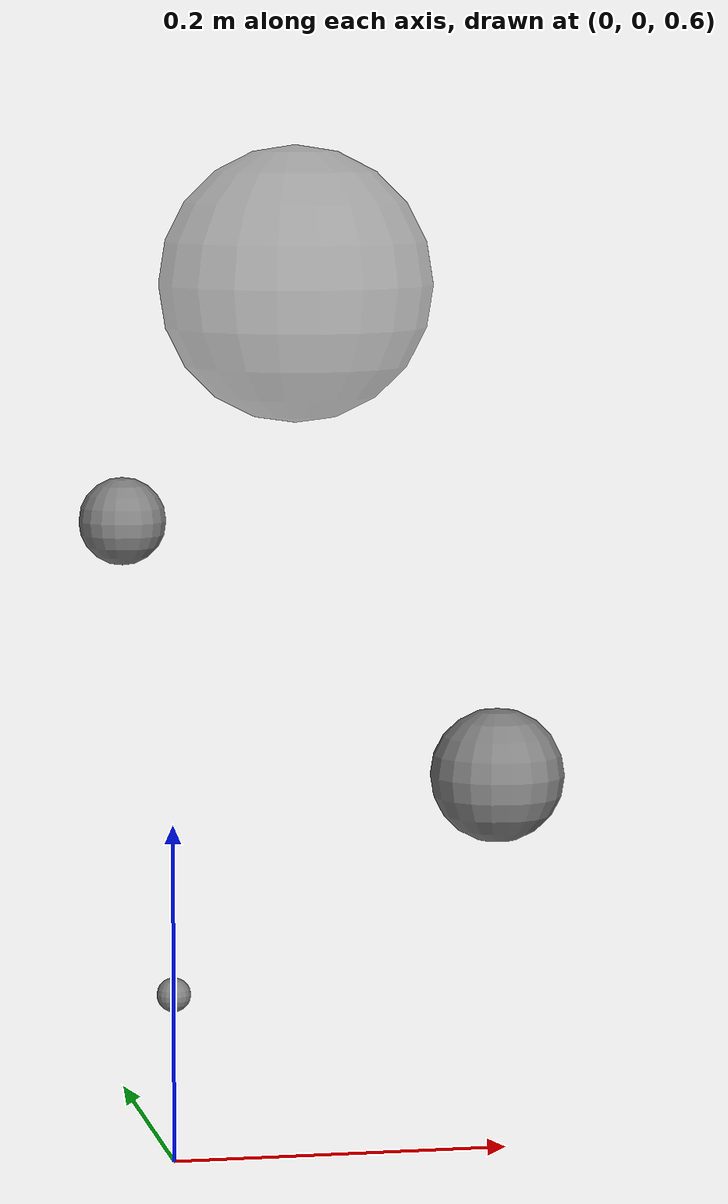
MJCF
<mujoco model="booster_t1">
  <compiler angle="radian" autolimits="true" />

  <worldbody>
    <body name="Trunk" pos="0 0 0.7">
      <inertial pos="0.055138 -1.42184e-06 0.105043" quat="0.999959 1.39867e-05 -0.00902028 -1.39205e-05" mass="11.7016" diaginertia="0.0915734 0.0768118 0.0556067" />
      <site name="imu" size="0.01" pos="0.0 0.0 0.0" />
      <joint name="world_joint" type="free" limited="false" actuatorfrclimited="false" />
      <geom name="trunk_collision" size="0.085 0.09 0.145" pos="0.06 0 0.12" type="box" contype="1" conaffinity="0" rgba="0.76 0.76 0.76 0." />
      <body name="H1" pos="0.0625 0 0.243">
        <inertial pos="-0.000508 -0.001403 0.057432" quat="0.763881 -0.0132172 0.00173419 0.645219" mass="0.44391" diaginertia="0.000241549 0.00022351 0.000149941" />
        <joint name="AAHead_yaw" pos="0 0 0" axis="0 0 1" range="-1.57 1.57" />
        <geom size="0.025 0.035" pos="0 0 0.06" quat="0.707105 0.707108 0 0" type="cylinder" rgba="0.4 0.4 0.4 0." contype="0" conaffinity="0" density="0" />
        <body name="H2" pos="0 0 0.06185">
          <inertial pos="0.007802 0.001262 0.098631" quat="0.988453 0.106172 -0.0745686 -0.0782786" mass="0.631019" diaginertia="0.00203553 0.00192467 0.00172381" />
          <joint name="Head_pitch" pos="0 0 0" axis="0 1 0" range="-0.35 1.22" />
          <geom size="0.08" pos="0.01 0 0.11" rgba="0.4 0.4 0.4 0.5" contype="0" conaffinity="0" density="0" />
        </body>
      </body>
      <body name="AL1" pos="0.0575 0.1063 0.219" quat="1 0 0.000440565 0">
        <inertial pos="-0.000677 0.044974 0" quat="0.50423 0.495734 -0.50423 0.495734" mass="0.53" diaginertia="0.001367 0.00129329 0.000292711" />
        <joint name="Left_Shoulder_Pitch" pos="0 0 0" axis="0 1 0" range="-3.31 1.22" armature="0.05" />
        <geom size="0.03 0.035" pos="0 0.047 0" quat="0.707105 0 0.707108 0" type="cylinder" rgba="0.76 0.76 0.76 0." contype="0" conaffinity="0" density="0" />
        <body name="AL2" pos="0 0.047 0">
          <inertial pos="0.003862 0.037976 0" quat="0.487991 0.511727 -0.487991 0.511727" mass="0.16" diaginertia="0.000401 0.00034538 0.00017662" />
          <joint name="Left_Shoulder_Roll" pos="0 0 0" axis="1 0 0" range="-1.74 1.57" />
          <body name="AL3" pos="0.00025 0.0605 0">
            <inertial pos="0 0.085353 -9.9e-05" quat="0.70641 0.707803 0 0" mass="1.02" diaginertia="0.012869 0.012798 0.000620953" />
            <joint name="Left_Elbow_Pitch" pos="0 0 0" axis="0 1 0" range="-2.27 2.27" armature="0.05" />
            <geom size="0.03 0.095" pos="0 0.07 0" quat="0.707105 0.707108 0 0" type="cylinder" rgba="0.4 0.4 0.4 0." contype="0" conaffinity="0" density="0" />
            <body name="left_hand_link" pos="0 0.1471 0">
              <inertial pos="-0.000107344 0.11022 0.00058741" quat="0.707869 0.706344 -5.3547e-05 -0.000214933" mass="0.329214" diaginertia="0.00819152 0.00816355 0.000224963" />
              <joint name="Left_Elbow_Yaw" pos="0 0 0" axis="0 0 1" range="-2.44 0" />
              <geom size="0.029 0.065" pos="0 0.12 0" quat="0.707105 0.707108 0 0" type="cylinder" rgba="0.4 0.4 0.4 0." contype="0" conaffinity="0" density="0" />
              <geom size="0.031" pos="0 0.216 0" contype="0" conaffinity="0" density="0" />
            </body>
          </body>
        </body>
      </body>
      <body name="AR1" pos="0.0575 -0.1063 0.219" quat="1 0 0.000440565 0">
        <inertial pos="-0.000677 -0.044974 0" quat="0.50423 0.495734 -0.50423 0.495734" mass="0.53" diaginertia="0.001367 0.00129329 0.000292711" />
        <joint name="Right_Shoulder_Pitch" pos="0 0 0" axis="0 1 0" range="-3.31 1.22" armature="0.05" />
        <geom size="0.03 0.035" pos="0 -0.047 0" quat="0.707105 0 0.707108 0" type="cylinder" rgba="0.76 0.76 0.76 0." contype="0" conaffinity="0" density="0" />
        <body name="AR2" pos="0 -0.047 0">
          <inertial pos="0.003862 -0.037976 0" quat="0.511727 0.487991 -0.511727 0.487991" mass="0.16" diaginertia="0.000401 0.00034538 0.00017662" />
          <joint name="Right_Shoulder_Roll" pos="0 0 0" axis="1 0 0" range="-1.57 1.74" />
          <body name="AR3" pos="0.00025 -0.0605 0">
            <inertial pos="0 -0.085353 -9.9e-05" quat="0.707803 0.70641 0 0" mass="1.02" diaginertia="0.012869 0.012798 0.000620953" />
            <joint name="Right_Elbow_Pitch" pos="0 0 0" axis="0 1 0" range="-2.27 2.27" armature="0.05" />
            <geom size="0.03 0.095" pos="0 -0.07 0" quat="0.707105 0.707108 0 0" type="cylinder" rgba="0.4 0.4 0.4 0." contype="0" conaffinity="0" density="0" />
            <body name="right_hand_link" pos="0 -0.1471 0">
              <inertial pos="-0.000107344 -0.11022 0.00058741" quat="0.706344 0.707869 0.000214933 5.3547e-05" mass="0.329214" diaginertia="0.00819152 0.00816355 0.000224963" />
              <joint name="Right_Elbow_Yaw" pos="0 0 0" axis="0 0 1" range="0 2.44" />
              <geom size="0.029 0.065" pos="0 -0.12 0" quat="0.707105 0.707108 0 0" type="cylinder" rgba="0.4 0.4 0.4 0." contype="0" conaffinity="0" density="0" />
              <geom size="0.031" pos="0 -0.216 0" contype="0" conaffinity="0" density="0" />
            </body>
          </body>
        </body>
      </body>
      <body name="Waist" pos="0.0625 0 -0.1155">
        <inertial pos="0.002284 3e-06 0.007301" quat="0.983649 0.000360386 -0.180076 0.00269791" mass="2.581" diaginertia="0.00536742 0.005299 0.00474258" />
        <joint name="Waist" pos="0 0 0" axis="0 0 1" range="-1.57 1.57" />
        <geom size="0.06 0.05" quat="0.707105 0.707108 0 0" type="cylinder" rgba="0.4 0.4 0.4 0." contype="0" conaffinity="0" density="0" />
        <body name="Hip_Pitch_Left" pos="0 0.106 0">
          <inertial pos="0.000534 -0.007296 -0.018083" quat="0.975141 0.2211 0.0145808 0.0017406" mass="1.021" diaginertia="0.00180547 0.00145926 0.00125327" />
          <joint name="Left_Hip_Pitch" pos="0 0 0" axis="0 1 0" range="-3.002 2.2166" />
          <geom size="0.045 0.0425" pos="-0.002 0 -0.02" quat="0.707105 0 0.707108 0" type="cylinder" rgba="0.76 0.76 0.76 0." contype="0" conaffinity="0" density="0" />
          <body name="Hip_Roll_Left" pos="0 0 -0.02">
            <inertial pos="0.001101 2.4e-05 -0.05375" quat="0.707081 -0.00599604 -0.00599604 0.707081" mass="0.385" diaginertia="0.001743 0.00151729 0.000514712" />
            <joint name="Left_Hip_Roll" pos="0 0 0" axis="1 0 0" range="-0.2 1.57" />
            <body name="Hip_Yaw_Left" pos="0 0 -0.081854">
              <inertial pos="-0.007233 0.000206 -0.089184" quat="0.696808 -0.033953 -0.0315708 0.715758" mass="2.166" diaginertia="0.0257334 0.0253024 0.00259215" />
              <joint name="Left_Hip_Yaw" pos="0 0 0" axis="0 0 1" range="-1 1" />
              <geom size="0.055 0.045" pos="-0.015 0 -0.135" quat="0.707105 0.707108 0 0" type="cylinder" rgba="0.4 0.4 0.4 0." contype="0" conaffinity="0" density="0" />
              <body name="Shank_Left" pos="-0.014 0 -0.134">
                <inertial pos="-0.006012 0.000259 -0.124318" quat="0.997573 0.00144024 -0.023949 0.0653706" mass="1.82" diaginertia="0.0346951 0.0345375 0.00185844" />
                <joint name="Left_Knee_Pitch" pos="0 0 0" axis="0 1 0" range="0 2.1817" />
                <geom size="0.05 0.04 0.07" pos="0 0 -0.15" type="box" rgba="0.4 0.4 0.4 0." contype="0" conaffinity="0" density="0" />
                <body name="Ankle_Cross_Left" pos="0 0 -0.28">
                  <inertial pos="-0.003722 0 -0.007981" quat="0.443136 0.551027 0.551027 0.443136" mass="0.073" diaginertia="2.9e-05 2.56589e-05 1.13411e-05" />
                  <joint name="Left_Ankle_Pitch" pos="0 0 0" axis="0 1 0" range="-0.87 0.35" armature="0.05" />
                  <body name="left_foot_link" pos="0 0.00025 -0.012">
                    <inertial pos="-0.000249 0 -0.00914" quat="0 0.651138 0 0.75896" mass="0.685" diaginertia="0.00269361 0.002385 0.00171539" />
                    <joint name="Left_Ankle_Roll" pos="0 0 0" axis="1 0 0" range="-0.44 0.44" armature="0.05" />
                    <geom name="l_foot_collision" size="0.112434 0.05 0.02183" pos="0.0101079 0 -0.0214208" type="box" contype="1" conaffinity="0" rgba="0.4 0.4 0.4 0." />
                  </body>
                </body>
              </body>
            </body>
          </body>
        </body>
        <body name="Hip_Pitch_Right" pos="0 -0.106 0">
          <inertial pos="0.000534 0.007514 -0.018082" quat="0.973446 -0.228403 0.0147148 -0.00419349" mass="1.021" diaginertia="0.00180552 0.0014632 0.00124928" />
          <joint name="Right_Hip_Pitch" pos="0 0 0" axis="0 1 0" range="-3.002 2.2166" />
          <geom size="0.045 0.0425" pos="-0.002 0 -0.02" quat="0.707105 0 0.707108 0" type="cylinder" rgba="0.76 0.76 0.76 0." contype="0" conaffinity="0" density="0" />
          <body name="Hip_Roll_Right" pos="0 0 -0.02">
            <inertial pos="0.001099 2.4e-05 -0.053748" quat="0.707081 -0.00599604 -0.00599604 0.707081" mass="0.385" diaginertia="0.001743 0.00151729 0.000514712" />
            <joint name="Right_Hip_Roll" pos="0 0 0" axis="1 0 0" range="-1.57 0.2" />
            <body name="Hip_Yaw_Right" pos="0 0 -0.081854">
              <inertial pos="-0.007191 -0.000149 -0.08922" quat="0.714468 -0.0315638 -0.0336391 0.698146" mass="2.17" diaginertia="0.0257623 0.0253298 0.00259389" />
              <joint name="Right_Hip_Yaw" pos="0 0 0" axis="0 0 1" range="-1 1" />
              <geom size="0.055 0.045" pos="-0.015 0 -0.135" quat="0.707105 0.707108 0 0" type="cylinder" rgba="0.4 0.4 0.4 0." contype="0" conaffinity="0" density="0" />
              <body name="Shank_Right" pos="-0.014 0 -0.134">
                <inertial pos="-0.005741 -0.000541 -0.122602" quat="0.99926 -0.000580963 -0.023461 -0.0304754" mass="1.82" diaginertia="0.0351717 0.0349574 0.00196589" />
                <joint name="Right_Knee_Pitch" pos="0 0 0" axis="0 1 0" range="0 2.1817" />
                <geom size="0.05 0.04 0.07" pos="0 0 -0.15" type="box" rgba="0.4 0.4 0.4 0." contype="0" conaffinity="0" density="0" />
                <body name="Ankle_Cross_Right" pos="0 0 -0.28">
                  <inertial pos="-0.003722 0 -0.007981" quat="0.443136 0.551027 0.551027 0.443136" mass="0.073" diaginertia="2.9e-05 2.56589e-05 1.13411e-05" />
                  <joint name="Right_Ankle_Pitch" pos="0 0 0" axis="0 1 0" range="-0.87 0.35" armature="0.05" />
                  <body name="right_foot_link" pos="0 -0.00025 -0.012">
                    <inertial pos="-0.000248 0 -0.00914" quat="0 0.651138 0 0.75896" mass="0.685" diaginertia="0.00269361 0.002385 0.00171539" />
                    <joint name="Right_Ankle_Roll" pos="0 0 0" axis="1 0 0" range="-0.44 0.44" armature="0.05" />
                    <geom name="r_foot_collision" size="0.112434 0.05 0.02183" pos="0.0101079 0 -0.0214208" type="box" contype="1" conaffinity="0" rgba="0.4 0.4 0.4 0." />
                  </body>
                </body>
              </body>
            </body>
          </body>
        </body>
      </body>
    </body>
  </worldbody>

  <sensor>
    <framequat name="orientation" objtype="site" noise="0.001" objname="imu" />
    <gyro name="angular-velocity" site="imu" noise="0.005" />
  </sensor>
</mujoco>
